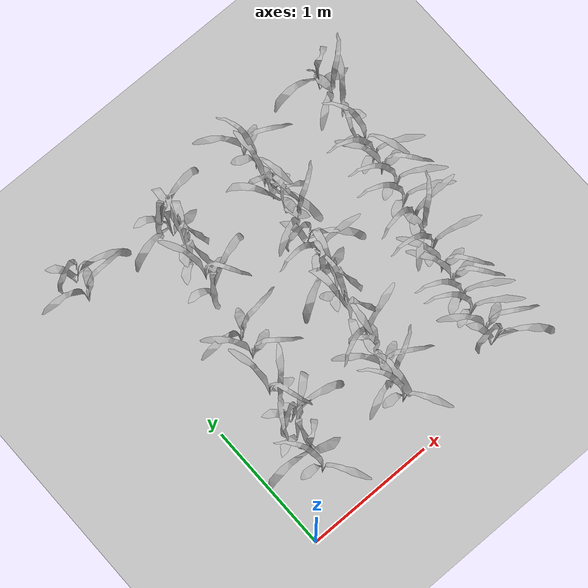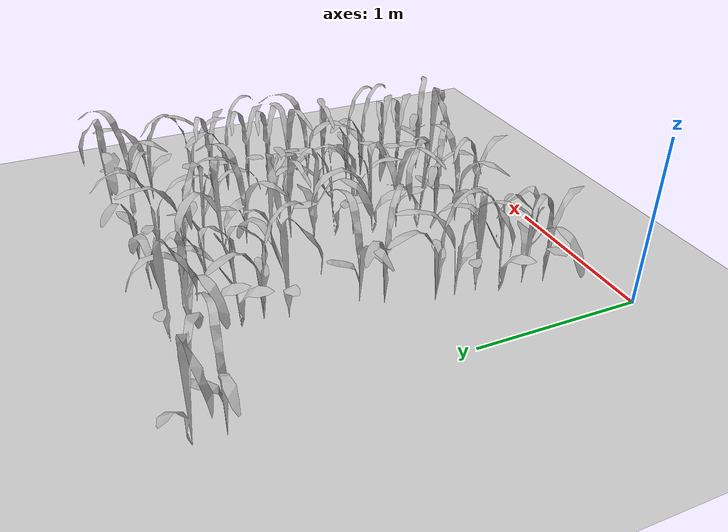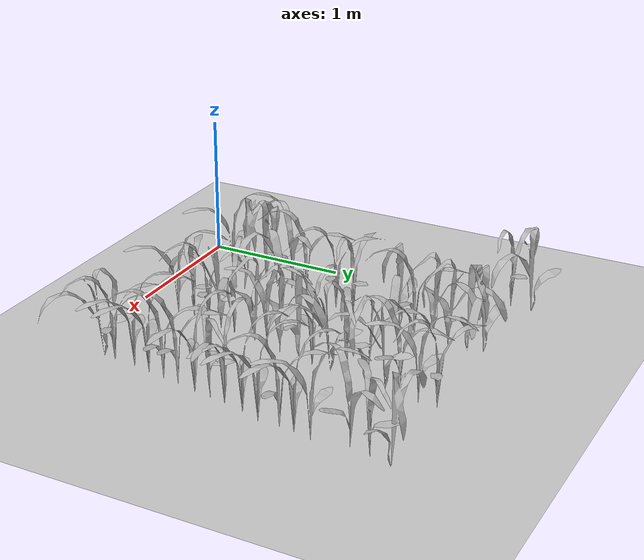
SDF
<sdf version="1.7">
 <world name="default">
  <model name="maize_02_0086">
   <pose>-0.081031 2.33269 -0.000245 -1.1e-05 1.2e-05 -1.03754</pose>
   <link name="maize_02_link">
    <inertial>
     <pose>0 0 0.01 0 -0 0</pose>
     <mass>0.3</mass>
     <inertia>
      <ixx>0.00334167</ixx>
      <ixy>0</ixy>
      <ixz>0</ixz>
      <iyy>0.00334167</iyy>
      <iyz>0</iyz>
      <izz>1.66667e-05</izz>
     </inertia>
     <pose>0 0 0.1 0 -0 0</pose>
    </inertial>
    <collision name="collision">
     <pose>0 0 0.2 0 -0 0</pose>
     <geometry><box><size>0.02 0.02 0.4</size></box></geometry>
     <surface><friction><ode><mu>10</mu><mu2>10</mu2></ode></friction></surface>
    </collision>
    <visual name="visual">
     <geometry>
      <mesh><uri>model://maize_02/meshes/maize_02.dae</uri><scale>0.683166 0.683166 0.683166</scale></mesh>
     </geometry>
    </visual>
   </link>
   <static>0</static>
  </model>
  <model name="maize_01_0087">
   <pose>-0.062156 2.4864 -0.000245 1.2e-05 -1.2e-05 0.398707</pose>
   <link name="maize_01_link">
    <inertial>
     <pose>0 0 0.01 0 -0 0</pose>
     <mass>0.3</mass>
     <inertia>
      <ixx>0.00334167</ixx>
      <ixy>0</ixy>
      <ixz>0</ixz>
      <iyy>0.00334167</iyy>
      <iyz>0</iyz>
      <izz>1.66667e-05</izz>
     </inertia>
     <pose>0 0 0.1 0 -0 0</pose>
    </inertial>
    <collision name="collision">
     <pose>0 0 0.2 0 -0 0</pose>
     <geometry><box><size>0.02 0.02 0.4</size></box></geometry>
     <surface><friction><ode><mu>10</mu><mu2>10</mu2></ode></friction></surface>
    </collision>
    <visual name="visual">
     <geometry>
      <mesh><uri>model://maize_01/meshes/maize_01.dae</uri><scale>0.683166 0.683166 0.683166</scale></mesh>
     </geometry>
    </visual>
   </link>
   <static>0</static>
  </model>
  <model name="maize_02_0110">
   <pose>0.354355 0.338241 -1e-06 6e-06 9.6e-05 1.08613</pose>
   <link name="maize_02_link">
    <inertial>
     <pose>0 0 0.01 0 -0 0</pose>
     <mass>0.3</mass>
     <inertia>
      <ixx>0.00334167</ixx>
      <ixy>0</ixy>
      <ixz>0</ixz>
      <iyy>0.00334167</iyy>
      <iyz>0</iyz>
      <izz>1.66667e-05</izz>
     </inertia>
     <pose>0 0 0.1 0 -0 0</pose>
    </inertial>
    <collision name="collision">
     <pose>0 0 0.2 0 -0 0</pose>
     <geometry><box><size>0.02 0.02 0.4</size></box></geometry>
     <surface><friction><ode><mu>10</mu><mu2>10</mu2></ode></friction></surface>
    </collision>
    <visual name="visual">
     <geometry>
      <mesh><uri>model://maize_02/meshes/maize_02.dae</uri><scale>0.683166 0.683166 0.683166</scale></mesh>
     </geometry>
    </visual>
   </link>
   <static>0</static>
  </model>
  <model name="maize_01_0111">
   <pose>0.375536 0.47279 -1e-06 -6e-06 -9.6e-05 -2.2901</pose>
   <link name="maize_01_link">
    <inertial>
     <pose>0 0 0.01 0 -0 0</pose>
     <mass>0.3</mass>
     <inertia>
      <ixx>0.00334167</ixx>
      <ixy>0</ixy>
      <ixz>0</ixz>
      <iyy>0.00334167</iyy>
      <iyz>0</iyz>
      <izz>1.66667e-05</izz>
     </inertia>
     <pose>0 0 0.1 0 -0 0</pose>
    </inertial>
    <collision name="collision">
     <pose>0 0 0.2 0 -0 0</pose>
     <geometry><box><size>0.02 0.02 0.4</size></box></geometry>
     <surface><friction><ode><mu>10</mu><mu2>10</mu2></ode></friction></surface>
    </collision>
    <visual name="visual">
     <geometry>
      <mesh><uri>model://maize_01/meshes/maize_01.dae</uri><scale>0.683166 0.683166 0.683166</scale></mesh>
     </geometry>
    </visual>
   </link>
   <static>0</static>
  </model>
  <model name="maize_01_0112">
   <pose>0.374012 0.623542 -1e-06 6e-06 9.6e-05 1.53382</pose>
   <link name="maize_01_link">
    <inertial>
     <pose>0 0 0.01 0 -0 0</pose>
     <mass>0.3</mass>
     <inertia>
      <ixx>0.00334167</ixx>
      <ixy>0</ixy>
      <ixz>0</ixz>
      <iyy>0.00334167</iyy>
      <iyz>0</iyz>
      <izz>1.66667e-05</izz>
     </inertia>
     <pose>0 0 0.1 0 -0 0</pose>
    </inertial>
    <collision name="collision">
     <pose>0 0 0.2 0 -0 0</pose>
     <geometry><box><size>0.02 0.02 0.4</size></box></geometry>
     <surface><friction><ode><mu>10</mu><mu2>10</mu2></ode></friction></surface>
    </collision>
    <visual name="visual">
     <geometry>
      <mesh><uri>model://maize_01/meshes/maize_01.dae</uri><scale>0.683166 0.683166 0.683166</scale></mesh>
     </geometry>
    </visual>
   </link>
   <static>0</static>
  </model>
  <model name="maize_01_0113">
   <pose>0.422794 0.743964 -1e-06 -9.6e-05 -6e-06 0.591219</pose>
   <link name="maize_01_link">
    <inertial>
     <pose>0 0 0.01 0 -0 0</pose>
     <mass>0.3</mass>
     <inertia>
      <ixx>0.00334167</ixx>
      <ixy>0</ixy>
      <ixz>0</ixz>
      <iyy>0.00334167</iyy>
      <iyz>0</iyz>
      <izz>1.66667e-05</izz>
     </inertia>
     <pose>0 0 0.1 0 -0 0</pose>
    </inertial>
    <collision name="collision">
     <pose>0 0 0.2 0 -0 0</pose>
     <geometry><box><size>0.02 0.02 0.4</size></box></geometry>
     <surface><friction><ode><mu>10</mu><mu2>10</mu2></ode></friction></surface>
    </collision>
    <visual name="visual">
     <geometry>
      <mesh><uri>model://maize_01/meshes/maize_01.dae</uri><scale>0.683166 0.683166 0.683166</scale></mesh>
     </geometry>
    </visual>
   </link>
   <static>0</static>
  </model>
  <model name="maize_02_0114">
   <pose>0.436553 0.871476 -1e-06 9.6e-05 -6e-06 3.0936</pose>
   <link name="maize_02_link">
    <inertial>
     <pose>0 0 0.01 0 -0 0</pose>
     <mass>0.3</mass>
     <inertia>
      <ixx>0.00334167</ixx>
      <ixy>0</ixy>
      <ixz>0</ixz>
      <iyy>0.00334167</iyy>
      <iyz>0</iyz>
      <izz>1.66667e-05</izz>
     </inertia>
     <pose>0 0 0.1 0 -0 0</pose>
    </inertial>
    <collision name="collision">
     <pose>0 0 0.2 0 -0 0</pose>
     <geometry><box><size>0.02 0.02 0.4</size></box></geometry>
     <surface><friction><ode><mu>10</mu><mu2>10</mu2></ode></friction></surface>
    </collision>
    <visual name="visual">
     <geometry>
      <mesh><uri>model://maize_02/meshes/maize_02.dae</uri><scale>0.683166 0.683166 0.683166</scale></mesh>
     </geometry>
    </visual>
   </link>
   <static>0</static>
  </model>
  <model name="maize_02_0115">
   <pose>0.437814 0.993077 -1e-06 -6e-06 -9.6e-05 -2.33157</pose>
   <link name="maize_02_link">
    <inertial>
     <pose>0 0 0.01 0 -0 0</pose>
     <mass>0.3</mass>
     <inertia>
      <ixx>0.00334167</ixx>
      <ixy>0</ixy>
      <ixz>0</ixz>
      <iyy>0.00334167</iyy>
      <iyz>0</iyz>
      <izz>1.66667e-05</izz>
     </inertia>
     <pose>0 0 0.1 0 -0 0</pose>
    </inertial>
    <collision name="collision">
     <pose>0 0 0.2 0 -0 0</pose>
     <geometry><box><size>0.02 0.02 0.4</size></box></geometry>
     <surface><friction><ode><mu>10</mu><mu2>10</mu2></ode></friction></surface>
    </collision>
    <visual name="visual">
     <geometry>
      <mesh><uri>model://maize_02/meshes/maize_02.dae</uri><scale>0.683166 0.683166 0.683166</scale></mesh>
     </geometry>
    </visual>
   </link>
   <static>0</static>
  </model>
  <model name="maize_02_0117">
   <pose>0.51786 1.26691 -1e-06 -9.6e-05 6e-06 -1.71861</pose>
   <link name="maize_02_link">
    <inertial>
     <pose>0 0 0.01 0 -0 0</pose>
     <mass>0.3</mass>
     <inertia>
      <ixx>0.00334167</ixx>
      <ixy>0</ixy>
      <ixz>0</ixz>
      <iyy>0.00334167</iyy>
      <iyz>0</iyz>
      <izz>1.66667e-05</izz>
     </inertia>
     <pose>0 0 0.1 0 -0 0</pose>
    </inertial>
    <collision name="collision">
     <pose>0 0 0.2 0 -0 0</pose>
     <geometry><box><size>0.02 0.02 0.4</size></box></geometry>
     <surface><friction><ode><mu>10</mu><mu2>10</mu2></ode></friction></surface>
    </collision>
    <visual name="visual">
     <geometry>
      <mesh><uri>model://maize_02/meshes/maize_02.dae</uri><scale>0.683166 0.683166 0.683166</scale></mesh>
     </geometry>
    </visual>
   </link>
   <static>0</static>
  </model>
  <model name="maize_02_0118">
   <pose>0.536292 1.41055 -0.000245 -1.1e-05 1.2e-05 -0.929973</pose>
   <link name="maize_02_link">
    <inertial>
     <pose>0 0 0.01 0 -0 0</pose>
     <mass>0.3</mass>
     <inertia>
      <ixx>0.00334167</ixx>
      <ixy>0</ixy>
      <ixz>0</ixz>
      <iyy>0.00334167</iyy>
      <iyz>0</iyz>
      <izz>1.66667e-05</izz>
     </inertia>
     <pose>0 0 0.1 0 -0 0</pose>
    </inertial>
    <collision name="collision">
     <pose>0 0 0.2 0 -0 0</pose>
     <geometry><box><size>0.02 0.02 0.4</size></box></geometry>
     <surface><friction><ode><mu>10</mu><mu2>10</mu2></ode></friction></surface>
    </collision>
    <visual name="visual">
     <geometry>
      <mesh><uri>model://maize_02/meshes/maize_02.dae</uri><scale>0.683166 0.683166 0.683166</scale></mesh>
     </geometry>
    </visual>
   </link>
   <static>0</static>
  </model>
  <model name="maize_01_0119">
   <pose>0.60163 1.78681 -0.000245 -1.1e-05 -1.2e-05 1.12217</pose>
   <link name="maize_01_link">
    <inertial>
     <pose>0 0 0.01 0 -0 0</pose>
     <mass>0.3</mass>
     <inertia>
      <ixx>0.00334167</ixx>
      <ixy>0</ixy>
      <ixz>0</ixz>
      <iyy>0.00334167</iyy>
      <iyz>0</iyz>
      <izz>1.66667e-05</izz>
     </inertia>
     <pose>0 0 0.1 0 -0 0</pose>
    </inertial>
    <collision name="collision">
     <pose>0 0 0.2 0 -0 0</pose>
     <geometry><box><size>0.02 0.02 0.4</size></box></geometry>
     <surface><friction><ode><mu>10</mu><mu2>10</mu2></ode></friction></surface>
    </collision>
    <visual name="visual">
     <geometry>
      <mesh><uri>model://maize_01/meshes/maize_01.dae</uri><scale>0.683166 0.683166 0.683166</scale></mesh>
     </geometry>
    </visual>
   </link>
   <static>0</static>
  </model>
  <model name="maize_02_0120">
   <pose>0.643655 1.91714 -0.000245 1.1e-05 1.2e-05 -2.10545</pose>
   <link name="maize_02_link">
    <inertial>
     <pose>0 0 0.01 0 -0 0</pose>
     <mass>0.3</mass>
     <inertia>
      <ixx>0.00334167</ixx>
      <ixy>0</ixy>
      <ixz>0</ixz>
      <iyy>0.00334167</iyy>
      <iyz>0</iyz>
      <izz>1.66667e-05</izz>
     </inertia>
     <pose>0 0 0.1 0 -0 0</pose>
    </inertial>
    <collision name="collision">
     <pose>0 0 0.2 0 -0 0</pose>
     <geometry><box><size>0.02 0.02 0.4</size></box></geometry>
     <surface><friction><ode><mu>10</mu><mu2>10</mu2></ode></friction></surface>
    </collision>
    <visual name="visual">
     <geometry>
      <mesh><uri>model://maize_02/meshes/maize_02.dae</uri><scale>0.683166 0.683166 0.683166</scale></mesh>
     </geometry>
    </visual>
   </link>
   <static>0</static>
  </model>
  <model name="maize_01_0121">
   <pose>0.629464 2.04697 -0.000245 -1.1e-05 1.2e-05 1.94563</pose>
   <link name="maize_01_link">
    <inertial>
     <pose>0 0 0.01 0 -0 0</pose>
     <mass>0.3</mass>
     <inertia>
      <ixx>0.00334167</ixx>
      <ixy>0</ixy>
      <ixz>0</ixz>
      <iyy>0.00334167</iyy>
      <iyz>0</iyz>
      <izz>1.66667e-05</izz>
     </inertia>
     <pose>0 0 0.1 0 -0 0</pose>
    </inertial>
    <collision name="collision">
     <pose>0 0 0.2 0 -0 0</pose>
     <geometry><box><size>0.02 0.02 0.4</size></box></geometry>
     <surface><friction><ode><mu>10</mu><mu2>10</mu2></ode></friction></surface>
    </collision>
    <visual name="visual">
     <geometry>
      <mesh><uri>model://maize_01/meshes/maize_01.dae</uri><scale>0.683166 0.683166 0.683166</scale></mesh>
     </geometry>
    </visual>
   </link>
   <static>0</static>
  </model>
  <model name="maize_01_0122">
   <pose>0.675617 2.17476 -0.000245 1.1e-05 -1.2e-05 2.19704</pose>
   <link name="maize_01_link">
    <inertial>
     <pose>0 0 0.01 0 -0 0</pose>
     <mass>0.3</mass>
     <inertia>
      <ixx>0.00334167</ixx>
      <ixy>0</ixy>
      <ixz>0</ixz>
      <iyy>0.00334167</iyy>
      <iyz>0</iyz>
      <izz>1.66667e-05</izz>
     </inertia>
     <pose>0 0 0.1 0 -0 0</pose>
    </inertial>
    <collision name="collision">
     <pose>0 0 0.2 0 -0 0</pose>
     <geometry><box><size>0.02 0.02 0.4</size></box></geometry>
     <surface><friction><ode><mu>10</mu><mu2>10</mu2></ode></friction></surface>
    </collision>
    <visual name="visual">
     <geometry>
      <mesh><uri>model://maize_01/meshes/maize_01.dae</uri><scale>0.683166 0.683166 0.683166</scale></mesh>
     </geometry>
    </visual>
   </link>
   <static>0</static>
  </model>
  <model name="maize_01_0123">
   <pose>0.673494 2.31518 -0.000245 1.1e-05 1.2e-05 -2.09889</pose>
   <link name="maize_01_link">
    <inertial>
     <pose>0 0 0.01 0 -0 0</pose>
     <mass>0.3</mass>
     <inertia>
      <ixx>0.00334167</ixx>
      <ixy>0</ixy>
      <ixz>0</ixz>
      <iyy>0.00334167</iyy>
      <iyz>0</iyz>
      <izz>1.66667e-05</izz>
     </inertia>
     <pose>0 0 0.1 0 -0 0</pose>
    </inertial>
    <collision name="collision">
     <pose>0 0 0.2 0 -0 0</pose>
     <geometry><box><size>0.02 0.02 0.4</size></box></geometry>
     <surface><friction><ode><mu>10</mu><mu2>10</mu2></ode></friction></surface>
    </collision>
    <visual name="visual">
     <geometry>
      <mesh><uri>model://maize_01/meshes/maize_01.dae</uri><scale>0.683166 0.683166 0.683166</scale></mesh>
     </geometry>
    </visual>
   </link>
   <static>0</static>
  </model>
  <model name="maize_01_0124">
   <pose>0.658595 2.41584 -0.000245 -1.1e-05 -1.2e-05 0.958909</pose>
   <link name="maize_01_link">
    <inertial>
     <pose>0 0 0.01 0 -0 0</pose>
     <mass>0.3</mass>
     <inertia>
      <ixx>0.00334167</ixx>
      <ixy>0</ixy>
      <ixz>0</ixz>
      <iyy>0.00334167</iyy>
      <iyz>0</iyz>
      <izz>1.66667e-05</izz>
     </inertia>
     <pose>0 0 0.1 0 -0 0</pose>
    </inertial>
    <collision name="collision">
     <pose>0 0 0.2 0 -0 0</pose>
     <geometry><box><size>0.02 0.02 0.4</size></box></geometry>
     <surface><friction><ode><mu>10</mu><mu2>10</mu2></ode></friction></surface>
    </collision>
    <visual name="visual">
     <geometry>
      <mesh><uri>model://maize_01/meshes/maize_01.dae</uri><scale>0.683166 0.683166 0.683166</scale></mesh>
     </geometry>
    </visual>
   </link>
   <static>0</static>
  </model>
  <model name="maize_02_0147">
   <pose>1.10628 0.346706 -0.000245 -1.2e-05 1.2e-05 1.07802</pose>
   <link name="maize_02_link">
    <inertial>
     <pose>0 0 0.01 0 -0 0</pose>
     <mass>0.3</mass>
     <inertia>
      <ixx>0.00334167</ixx>
      <ixy>0</ixy>
      <ixz>0</ixz>
      <iyy>0.00334167</iyy>
      <iyz>0</iyz>
      <izz>1.66667e-05</izz>
     </inertia>
     <pose>0 0 0.1 0 -0 0</pose>
    </inertial>
    <collision name="collision">
     <pose>0 0 0.2 0 -0 0</pose>
     <geometry><box><size>0.02 0.02 0.4</size></box></geometry>
     <surface><friction><ode><mu>10</mu><mu2>10</mu2></ode></friction></surface>
    </collision>
    <visual name="visual">
     <geometry>
      <mesh><uri>model://maize_02/meshes/maize_02.dae</uri><scale>0.683166 0.683166 0.683166</scale></mesh>
     </geometry>
    </visual>
   </link>
   <static>0</static>
  </model>
  <model name="maize_02_0148">
   <pose>1.10485 0.475249 -0.000245 -1.2e-05 -1.2e-05 -0.554522</pose>
   <link name="maize_02_link">
    <inertial>
     <pose>0 0 0.01 0 -0 0</pose>
     <mass>0.3</mass>
     <inertia>
      <ixx>0.00334167</ixx>
      <ixy>0</ixy>
      <ixz>0</ixz>
      <iyy>0.00334167</iyy>
      <iyz>0</iyz>
      <izz>1.66667e-05</izz>
     </inertia>
     <pose>0 0 0.1 0 -0 0</pose>
    </inertial>
    <collision name="collision">
     <pose>0 0 0.2 0 -0 0</pose>
     <geometry><box><size>0.02 0.02 0.4</size></box></geometry>
     <surface><friction><ode><mu>10</mu><mu2>10</mu2></ode></friction></surface>
    </collision>
    <visual name="visual">
     <geometry>
      <mesh><uri>model://maize_02/meshes/maize_02.dae</uri><scale>0.683166 0.683166 0.683166</scale></mesh>
     </geometry>
    </visual>
   </link>
   <static>0</static>
  </model>
  <model name="maize_02_0149">
   <pose>1.13518 0.609726 -0.000245 -1.2e-05 -1.2e-05 -1.60262</pose>
   <link name="maize_02_link">
    <inertial>
     <pose>0 0 0.01 0 -0 0</pose>
     <mass>0.3</mass>
     <inertia>
      <ixx>0.00334167</ixx>
      <ixy>0</ixy>
      <ixz>0</ixz>
      <iyy>0.00334167</iyy>
      <iyz>0</iyz>
      <izz>1.66667e-05</izz>
     </inertia>
     <pose>0 0 0.1 0 -0 0</pose>
    </inertial>
    <collision name="collision">
     <pose>0 0 0.2 0 -0 0</pose>
     <geometry><box><size>0.02 0.02 0.4</size></box></geometry>
     <surface><friction><ode><mu>10</mu><mu2>10</mu2></ode></friction></surface>
    </collision>
    <visual name="visual">
     <geometry>
      <mesh><uri>model://maize_02/meshes/maize_02.dae</uri><scale>0.683166 0.683166 0.683166</scale></mesh>
     </geometry>
    </visual>
   </link>
   <static>0</static>
  </model>
  <model name="maize_01_0150">
   <pose>1.15276 0.717407 -0.000245 -1.2e-05 -1.2e-05 -0.872032</pose>
   <link name="maize_01_link">
    <inertial>
     <pose>0 0 0.01 0 -0 0</pose>
     <mass>0.3</mass>
     <inertia>
      <ixx>0.00334167</ixx>
      <ixy>0</ixy>
      <ixz>0</ixz>
      <iyy>0.00334167</iyy>
      <iyz>0</iyz>
      <izz>1.66667e-05</izz>
     </inertia>
     <pose>0 0 0.1 0 -0 0</pose>
    </inertial>
    <collision name="collision">
     <pose>0 0 0.2 0 -0 0</pose>
     <geometry><box><size>0.02 0.02 0.4</size></box></geometry>
     <surface><friction><ode><mu>10</mu><mu2>10</mu2></ode></friction></surface>
    </collision>
    <visual name="visual">
     <geometry>
      <mesh><uri>model://maize_01/meshes/maize_01.dae</uri><scale>0.683166 0.683166 0.683166</scale></mesh>
     </geometry>
    </visual>
   </link>
   <static>0</static>
  </model>
  <model name="maize_02_0151">
   <pose>1.19778 0.848006 -0.000245 1.2e-05 1.2e-05 2.48058</pose>
   <link name="maize_02_link">
    <inertial>
     <pose>0 0 0.01 0 -0 0</pose>
     <mass>0.3</mass>
     <inertia>
      <ixx>0.00334167</ixx>
      <ixy>0</ixy>
      <ixz>0</ixz>
      <iyy>0.00334167</iyy>
      <iyz>0</iyz>
      <izz>1.66667e-05</izz>
     </inertia>
     <pose>0 0 0.1 0 -0 0</pose>
    </inertial>
    <collision name="collision">
     <pose>0 0 0.2 0 -0 0</pose>
     <geometry><box><size>0.02 0.02 0.4</size></box></geometry>
     <surface><friction><ode><mu>10</mu><mu2>10</mu2></ode></friction></surface>
    </collision>
    <visual name="visual">
     <geometry>
      <mesh><uri>model://maize_02/meshes/maize_02.dae</uri><scale>0.683166 0.683166 0.683166</scale></mesh>
     </geometry>
    </visual>
   </link>
   <static>0</static>
  </model>
  <model name="maize_01_0152">
   <pose>1.20715 1.00955 -0.000245 1.2e-05 1.2e-05 2.41906</pose>
   <link name="maize_01_link">
    <inertial>
     <pose>0 0 0.01 0 -0 0</pose>
     <mass>0.3</mass>
     <inertia>
      <ixx>0.00334167</ixx>
      <ixy>0</ixy>
      <ixz>0</ixz>
      <iyy>0.00334167</iyy>
      <iyz>0</iyz>
      <izz>1.66667e-05</izz>
     </inertia>
     <pose>0 0 0.1 0 -0 0</pose>
    </inertial>
    <collision name="collision">
     <pose>0 0 0.2 0 -0 0</pose>
     <geometry><box><size>0.02 0.02 0.4</size></box></geometry>
     <surface><friction><ode><mu>10</mu><mu2>10</mu2></ode></friction></surface>
    </collision>
    <visual name="visual">
     <geometry>
      <mesh><uri>model://maize_01/meshes/maize_01.dae</uri><scale>0.683166 0.683166 0.683166</scale></mesh>
     </geometry>
    </visual>
   </link>
   <static>0</static>
  </model>
  <model name="maize_02_0153">
   <pose>1.24107 1.12393 -0.000245 -1.2e-05 1.2e-05 0.449679</pose>
   <link name="maize_02_link">
    <inertial>
     <pose>0 0 0.01 0 -0 0</pose>
     <mass>0.3</mass>
     <inertia>
      <ixx>0.00334167</ixx>
      <ixy>0</ixy>
      <ixz>0</ixz>
      <iyy>0.00334167</iyy>
      <iyz>0</iyz>
      <izz>1.66667e-05</izz>
     </inertia>
     <pose>0 0 0.1 0 -0 0</pose>
    </inertial>
    <collision name="collision">
     <pose>0 0 0.2 0 -0 0</pose>
     <geometry><box><size>0.02 0.02 0.4</size></box></geometry>
     <surface><friction><ode><mu>10</mu><mu2>10</mu2></ode></friction></surface>
    </collision>
    <visual name="visual">
     <geometry>
      <mesh><uri>model://maize_02/meshes/maize_02.dae</uri><scale>0.683166 0.683166 0.683166</scale></mesh>
     </geometry>
    </visual>
   </link>
   <static>0</static>
  </model>
  <model name="maize_01_0154">
   <pose>1.27299 1.23605 -0.000245 1.2e-05 1.2e-05 2.07229</pose>
   <link name="maize_01_link">
    <inertial>
     <pose>0 0 0.01 0 -0 0</pose>
     <mass>0.3</mass>
     <inertia>
      <ixx>0.00334167</ixx>
      <ixy>0</ixy>
      <ixz>0</ixz>
      <iyy>0.00334167</iyy>
      <iyz>0</iyz>
      <izz>1.66667e-05</izz>
     </inertia>
     <pose>0 0 0.1 0 -0 0</pose>
    </inertial>
    <collision name="collision">
     <pose>0 0 0.2 0 -0 0</pose>
     <geometry><box><size>0.02 0.02 0.4</size></box></geometry>
     <surface><friction><ode><mu>10</mu><mu2>10</mu2></ode></friction></surface>
    </collision>
    <visual name="visual">
     <geometry>
      <mesh><uri>model://maize_01/meshes/maize_01.dae</uri><scale>0.683166 0.683166 0.683166</scale></mesh>
     </geometry>
    </visual>
   </link>
   <static>0</static>
  </model>
  <model name="maize_01_0155">
   <pose>1.26946 1.37908 -0.000245 1.2e-05 -1.2e-05 -1.80937</pose>
   <link name="maize_01_link">
    <inertial>
     <pose>0 0 0.01 0 -0 0</pose>
     <mass>0.3</mass>
     <inertia>
      <ixx>0.00334167</ixx>
      <ixy>0</ixy>
      <ixz>0</ixz>
      <iyy>0.00334167</iyy>
      <iyz>0</iyz>
      <izz>1.66667e-05</izz>
     </inertia>
     <pose>0 0 0.1 0 -0 0</pose>
    </inertial>
    <collision name="collision">
     <pose>0 0 0.2 0 -0 0</pose>
     <geometry><box><size>0.02 0.02 0.4</size></box></geometry>
     <surface><friction><ode><mu>10</mu><mu2>10</mu2></ode></friction></surface>
    </collision>
    <visual name="visual">
     <geometry>
      <mesh><uri>model://maize_01/meshes/maize_01.dae</uri><scale>0.683166 0.683166 0.683166</scale></mesh>
     </geometry>
    </visual>
   </link>
   <static>0</static>
  </model>
  <model name="maize_02_0156">
   <pose>1.33116 1.50671 -0.000245 1.2e-05 1.2e-05 2.08945</pose>
   <link name="maize_02_link">
    <inertial>
     <pose>0 0 0.01 0 -0 0</pose>
     <mass>0.3</mass>
     <inertia>
      <ixx>0.00334167</ixx>
      <ixy>0</ixy>
      <ixz>0</ixz>
      <iyy>0.00334167</iyy>
      <iyz>0</iyz>
      <izz>1.66667e-05</izz>
     </inertia>
     <pose>0 0 0.1 0 -0 0</pose>
    </inertial>
    <collision name="collision">
     <pose>0 0 0.2 0 -0 0</pose>
     <geometry><box><size>0.02 0.02 0.4</size></box></geometry>
     <surface><friction><ode><mu>10</mu><mu2>10</mu2></ode></friction></surface>
    </collision>
    <visual name="visual">
     <geometry>
      <mesh><uri>model://maize_02/meshes/maize_02.dae</uri><scale>0.683166 0.683166 0.683166</scale></mesh>
     </geometry>
    </visual>
   </link>
   <static>0</static>
  </model>
  <model name="maize_01_0157">
   <pose>1.33108 1.63729 -0.000245 1.2e-05 1.2e-05 0.011187</pose>
   <link name="maize_01_link">
    <inertial>
     <pose>0 0 0.01 0 -0 0</pose>
     <mass>0.3</mass>
     <inertia>
      <ixx>0.00334167</ixx>
      <ixy>0</ixy>
      <ixz>0</ixz>
      <iyy>0.00334167</iyy>
      <iyz>0</iyz>
      <izz>1.66667e-05</izz>
     </inertia>
     <pose>0 0 0.1 0 -0 0</pose>
    </inertial>
    <collision name="collision">
     <pose>0 0 0.2 0 -0 0</pose>
     <geometry><box><size>0.02 0.02 0.4</size></box></geometry>
     <surface><friction><ode><mu>10</mu><mu2>10</mu2></ode></friction></surface>
    </collision>
    <visual name="visual">
     <geometry>
      <mesh><uri>model://maize_01/meshes/maize_01.dae</uri><scale>0.683166 0.683166 0.683166</scale></mesh>
     </geometry>
    </visual>
   </link>
   <static>0</static>
  </model>
  <model name="maize_02_0158">
   <pose>1.37618 1.77807 -0.000245 -1.2e-05 1.2e-05 -0.458555</pose>
   <link name="maize_02_link">
    <inertial>
     <pose>0 0 0.01 0 -0 0</pose>
     <mass>0.3</mass>
     <inertia>
      <ixx>0.00334167</ixx>
      <ixy>0</ixy>
      <ixz>0</ixz>
      <iyy>0.00334167</iyy>
      <iyz>0</iyz>
      <izz>1.66667e-05</izz>
     </inertia>
     <pose>0 0 0.1 0 -0 0</pose>
    </inertial>
    <collision name="collision">
     <pose>0 0 0.2 0 -0 0</pose>
     <geometry><box><size>0.02 0.02 0.4</size></box></geometry>
     <surface><friction><ode><mu>10</mu><mu2>10</mu2></ode></friction></surface>
    </collision>
    <visual name="visual">
     <geometry>
      <mesh><uri>model://maize_02/meshes/maize_02.dae</uri><scale>0.683166 0.683166 0.683166</scale></mesh>
     </geometry>
    </visual>
   </link>
   <static>0</static>
  </model>
  <model name="maize_01_0159">
   <pose>1.38688 1.92236 -0.000245 1.2e-05 1.2e-05 3.05468</pose>
   <link name="maize_01_link">
    <inertial>
     <pose>0 0 0.01 0 -0 0</pose>
     <mass>0.3</mass>
     <inertia>
      <ixx>0.00334167</ixx>
      <ixy>0</ixy>
      <ixz>0</ixz>
      <iyy>0.00334167</iyy>
      <iyz>0</iyz>
      <izz>1.66667e-05</izz>
     </inertia>
     <pose>0 0 0.1 0 -0 0</pose>
    </inertial>
    <collision name="collision">
     <pose>0 0 0.2 0 -0 0</pose>
     <geometry><box><size>0.02 0.02 0.4</size></box></geometry>
     <surface><friction><ode><mu>10</mu><mu2>10</mu2></ode></friction></surface>
    </collision>
    <visual name="visual">
     <geometry>
      <mesh><uri>model://maize_01/meshes/maize_01.dae</uri><scale>0.683166 0.683166 0.683166</scale></mesh>
     </geometry>
    </visual>
   </link>
   <static>0</static>
  </model>
  <model name="maize_01_0160">
   <pose>1.38172 2.04762 -0.000245 -1.2e-05 1.2e-05 -0.552599</pose>
   <link name="maize_01_link">
    <inertial>
     <pose>0 0 0.01 0 -0 0</pose>
     <mass>0.3</mass>
     <inertia>
      <ixx>0.00334167</ixx>
      <ixy>0</ixy>
      <ixz>0</ixz>
      <iyy>0.00334167</iyy>
      <iyz>0</iyz>
      <izz>1.66667e-05</izz>
     </inertia>
     <pose>0 0 0.1 0 -0 0</pose>
    </inertial>
    <collision name="collision">
     <pose>0 0 0.2 0 -0 0</pose>
     <geometry><box><size>0.02 0.02 0.4</size></box></geometry>
     <surface><friction><ode><mu>10</mu><mu2>10</mu2></ode></friction></surface>
    </collision>
    <visual name="visual">
     <geometry>
      <mesh><uri>model://maize_01/meshes/maize_01.dae</uri><scale>0.683166 0.683166 0.683166</scale></mesh>
     </geometry>
    </visual>
   </link>
   <static>0</static>
  </model>
  <model name="maize_02_0161">
   <pose>1.39508 2.15306 -0.000245 1.2e-05 1.2e-05 -2.57605</pose>
   <link name="maize_02_link">
    <inertial>
     <pose>0 0 0.01 0 -0 0</pose>
     <mass>0.3</mass>
     <inertia>
      <ixx>0.00334167</ixx>
      <ixy>0</ixy>
      <ixz>0</ixz>
      <iyy>0.00334167</iyy>
      <iyz>0</iyz>
      <izz>1.66667e-05</izz>
     </inertia>
     <pose>0 0 0.1 0 -0 0</pose>
    </inertial>
    <collision name="collision">
     <pose>0 0 0.2 0 -0 0</pose>
     <geometry><box><size>0.02 0.02 0.4</size></box></geometry>
     <surface><friction><ode><mu>10</mu><mu2>10</mu2></ode></friction></surface>
    </collision>
    <visual name="visual">
     <geometry>
      <mesh><uri>model://maize_02/meshes/maize_02.dae</uri><scale>0.683166 0.683166 0.683166</scale></mesh>
     </geometry>
    </visual>
   </link>
   <static>0</static>
  </model>
  <model name="maize_02_0162">
   <pose>1.4365 2.29786 -0.000245 -1.2e-05 -1.2e-05 0.710932</pose>
   <link name="maize_02_link">
    <inertial>
     <pose>0 0 0.01 0 -0 0</pose>
     <mass>0.3</mass>
     <inertia>
      <ixx>0.00334167</ixx>
      <ixy>0</ixy>
      <ixz>0</ixz>
      <iyy>0.00334167</iyy>
      <iyz>0</iyz>
      <izz>1.66667e-05</izz>
     </inertia>
     <pose>0 0 0.1 0 -0 0</pose>
    </inertial>
    <collision name="collision">
     <pose>0 0 0.2 0 -0 0</pose>
     <geometry><box><size>0.02 0.02 0.4</size></box></geometry>
     <surface><friction><ode><mu>10</mu><mu2>10</mu2></ode></friction></surface>
    </collision>
    <visual name="visual">
     <geometry>
      <mesh><uri>model://maize_02/meshes/maize_02.dae</uri><scale>0.683166 0.683166 0.683166</scale></mesh>
     </geometry>
    </visual>
   </link>
   <static>0</static>
  </model>
  <model name="maize_02_0163">
   <pose>1.4307 2.42271 -0.000245 -1.2e-05 -1.2e-05 -1.54925</pose>
   <link name="maize_02_link">
    <inertial>
     <pose>0 0 0.01 0 -0 0</pose>
     <mass>0.3</mass>
     <inertia>
      <ixx>0.00334167</ixx>
      <ixy>0</ixy>
      <ixz>0</ixz>
      <iyy>0.00334167</iyy>
      <iyz>0</iyz>
      <izz>1.66667e-05</izz>
     </inertia>
     <pose>0 0 0.1 0 -0 0</pose>
    </inertial>
    <collision name="collision">
     <pose>0 0 0.2 0 -0 0</pose>
     <geometry><box><size>0.02 0.02 0.4</size></box></geometry>
     <surface><friction><ode><mu>10</mu><mu2>10</mu2></ode></friction></surface>
    </collision>
    <visual name="visual">
     <geometry>
      <mesh><uri>model://maize_02/meshes/maize_02.dae</uri><scale>0.683166 0.683166 0.683166</scale></mesh>
     </geometry>
    </visual>
   </link>
   <static>0</static>
  </model>
  <model name="maize_01_0185">
   <pose>1.843 0.246525 -1e-06 6e-06 -9.6e-05 0.119906</pose>
   <link name="maize_01_link">
    <inertial>
     <pose>0 0 0.01 0 -0 0</pose>
     <mass>0.3</mass>
     <inertia>
      <ixx>0.00334167</ixx>
      <ixy>0</ixy>
      <ixz>0</ixz>
      <iyy>0.00334167</iyy>
      <iyz>0</iyz>
      <izz>1.66667e-05</izz>
     </inertia>
     <pose>0 0 0.1 0 -0 0</pose>
    </inertial>
    <collision name="collision">
     <pose>0 0 0.2 0 -0 0</pose>
     <geometry><box><size>0.02 0.02 0.4</size></box></geometry>
     <surface><friction><ode><mu>10</mu><mu2>10</mu2></ode></friction></surface>
    </collision>
    <visual name="visual">
     <geometry>
      <mesh><uri>model://maize_01/meshes/maize_01.dae</uri><scale>0.683166 0.683166 0.683166</scale></mesh>
     </geometry>
    </visual>
   </link>
   <static>0</static>
  </model>
  <model name="maize_02_0186">
   <pose>1.86387 0.346755 -1e-06 -9.6e-05 6e-06 -1.59288</pose>
   <link name="maize_02_link">
    <inertial>
     <pose>0 0 0.01 0 -0 0</pose>
     <mass>0.3</mass>
     <inertia>
      <ixx>0.00334167</ixx>
      <ixy>0</ixy>
      <ixz>0</ixz>
      <iyy>0.00334167</iyy>
      <iyz>0</iyz>
      <izz>1.66667e-05</izz>
     </inertia>
     <pose>0 0 0.1 0 -0 0</pose>
    </inertial>
    <collision name="collision">
     <pose>0 0 0.2 0 -0 0</pose>
     <geometry><box><size>0.02 0.02 0.4</size></box></geometry>
     <surface><friction><ode><mu>10</mu><mu2>10</mu2></ode></friction></surface>
    </collision>
    <visual name="visual">
     <geometry>
      <mesh><uri>model://maize_02/meshes/maize_02.dae</uri><scale>0.683166 0.683166 0.683166</scale></mesh>
     </geometry>
    </visual>
   </link>
   <static>0</static>
  </model>
  <model name="maize_02_0187">
   <pose>1.86891 0.50101 -1e-06 9.6e-05 -6e-06 1.50461</pose>
   <link name="maize_02_link">
    <inertial>
     <pose>0 0 0.01 0 -0 0</pose>
     <mass>0.3</mass>
     <inertia>
      <ixx>0.00334167</ixx>
      <ixy>0</ixy>
      <ixz>0</ixz>
      <iyy>0.00334167</iyy>
      <iyz>0</iyz>
      <izz>1.66667e-05</izz>
     </inertia>
     <pose>0 0 0.1 0 -0 0</pose>
    </inertial>
    <collision name="collision">
     <pose>0 0 0.2 0 -0 0</pose>
     <geometry><box><size>0.02 0.02 0.4</size></box></geometry>
     <surface><friction><ode><mu>10</mu><mu2>10</mu2></ode></friction></surface>
    </collision>
    <visual name="visual">
     <geometry>
      <mesh><uri>model://maize_02/meshes/maize_02.dae</uri><scale>0.683166 0.683166 0.683166</scale></mesh>
     </geometry>
    </visual>
   </link>
   <static>0</static>
  </model>
  <model name="maize_02_0188">
   <pose>1.88363 0.621008 -1e-06 9.6e-05 6e-06 1.58333</pose>
   <link name="maize_02_link">
    <inertial>
     <pose>0 0 0.01 0 -0 0</pose>
     <mass>0.3</mass>
     <inertia>
      <ixx>0.00334167</ixx>
      <ixy>0</ixy>
      <ixz>0</ixz>
      <iyy>0.00334167</iyy>
      <iyz>0</iyz>
      <izz>1.66667e-05</izz>
     </inertia>
     <pose>0 0 0.1 0 -0 0</pose>
    </inertial>
    <collision name="collision">
     <pose>0 0 0.2 0 -0 0</pose>
     <geometry><box><size>0.02 0.02 0.4</size></box></geometry>
     <surface><friction><ode><mu>10</mu><mu2>10</mu2></ode></friction></surface>
    </collision>
    <visual name="visual">
     <geometry>
      <mesh><uri>model://maize_02/meshes/maize_02.dae</uri><scale>0.683166 0.683166 0.683166</scale></mesh>
     </geometry>
    </visual>
   </link>
   <static>0</static>
  </model>
  <model name="maize_02_0189">
   <pose>1.92329 0.760063 -0.000245 -1.2e-05 1.1e-05 -1.99578</pose>
   <link name="maize_02_link">
    <inertial>
     <pose>0 0 0.01 0 -0 0</pose>
     <mass>0.3</mass>
     <inertia>
      <ixx>0.00334167</ixx>
      <ixy>0</ixy>
      <ixz>0</ixz>
      <iyy>0.00334167</iyy>
      <iyz>0</iyz>
      <izz>1.66667e-05</izz>
     </inertia>
     <pose>0 0 0.1 0 -0 0</pose>
    </inertial>
    <collision name="collision">
     <pose>0 0 0.2 0 -0 0</pose>
     <geometry><box><size>0.02 0.02 0.4</size></box></geometry>
     <surface><friction><ode><mu>10</mu><mu2>10</mu2></ode></friction></surface>
    </collision>
    <visual name="visual">
     <geometry>
      <mesh><uri>model://maize_02/meshes/maize_02.dae</uri><scale>0.683166 0.683166 0.683166</scale></mesh>
     </geometry>
    </visual>
   </link>
   <static>0</static>
  </model>
  <model name="maize_02_0190">
   <pose>1.92695 0.869426 -0.000245 -1.2e-05 1.1e-05 -2.0313</pose>
   <link name="maize_02_link">
    <inertial>
     <pose>0 0 0.01 0 -0 0</pose>
     <mass>0.3</mass>
     <inertia>
      <ixx>0.00334167</ixx>
      <ixy>0</ixy>
      <ixz>0</ixz>
      <iyy>0.00334167</iyy>
      <iyz>0</iyz>
      <izz>1.66667e-05</izz>
     </inertia>
     <pose>0 0 0.1 0 -0 0</pose>
    </inertial>
    <collision name="collision">
     <pose>0 0 0.2 0 -0 0</pose>
     <geometry><box><size>0.02 0.02 0.4</size></box></geometry>
     <surface><friction><ode><mu>10</mu><mu2>10</mu2></ode></friction></surface>
    </collision>
    <visual name="visual">
     <geometry>
      <mesh><uri>model://maize_02/meshes/maize_02.dae</uri><scale>0.683166 0.683166 0.683166</scale></mesh>
     </geometry>
    </visual>
   </link>
   <static>0</static>
  </model>
  <model name="maize_02_0191">
   <pose>1.97219 1.02111 -1e-06 -6e-06 -9.6e-05 1.88916</pose>
   <link name="maize_02_link">
    <inertial>
     <pose>0 0 0.01 0 -0 0</pose>
     <mass>0.3</mass>
     <inertia>
      <ixx>0.00334167</ixx>
      <ixy>0</ixy>
      <ixz>0</ixz>
      <iyy>0.00334167</iyy>
      <iyz>0</iyz>
      <izz>1.66667e-05</izz>
     </inertia>
     <pose>0 0 0.1 0 -0 0</pose>
    </inertial>
    <collision name="collision">
     <pose>0 0 0.2 0 -0 0</pose>
     <geometry><box><size>0.02 0.02 0.4</size></box></geometry>
     <surface><friction><ode><mu>10</mu><mu2>10</mu2></ode></friction></surface>
    </collision>
    <visual name="visual">
     <geometry>
      <mesh><uri>model://maize_02/meshes/maize_02.dae</uri><scale>0.683166 0.683166 0.683166</scale></mesh>
     </geometry>
    </visual>
   </link>
   <static>0</static>
  </model>
  <model name="maize_02_0192">
   <pose>1.98189 1.13926 -1e-06 9.6e-05 6e-06 -0.228362</pose>
   <link name="maize_02_link">
    <inertial>
     <pose>0 0 0.01 0 -0 0</pose>
     <mass>0.3</mass>
     <inertia>
      <ixx>0.00334167</ixx>
      <ixy>0</ixy>
      <ixz>0</ixz>
      <iyy>0.00334167</iyy>
      <iyz>0</iyz>
      <izz>1.66667e-05</izz>
     </inertia>
     <pose>0 0 0.1 0 -0 0</pose>
    </inertial>
    <collision name="collision">
     <pose>0 0 0.2 0 -0 0</pose>
     <geometry><box><size>0.02 0.02 0.4</size></box></geometry>
     <surface><friction><ode><mu>10</mu><mu2>10</mu2></ode></friction></surface>
    </collision>
    <visual name="visual">
     <geometry>
      <mesh><uri>model://maize_02/meshes/maize_02.dae</uri><scale>0.683166 0.683166 0.683166</scale></mesh>
     </geometry>
    </visual>
   </link>
   <static>0</static>
  </model>
  <model name="maize_02_0193">
   <pose>2.01079 1.25947 -0.000245 -1.2e-05 -1.1e-05 2.19018</pose>
   <link name="maize_02_link">
    <inertial>
     <pose>0 0 0.01 0 -0 0</pose>
     <mass>0.3</mass>
     <inertia>
      <ixx>0.00334167</ixx>
      <ixy>0</ixy>
      <ixz>0</ixz>
      <iyy>0.00334167</iyy>
      <iyz>0</iyz>
      <izz>1.66667e-05</izz>
     </inertia>
     <pose>0 0 0.1 0 -0 0</pose>
    </inertial>
    <collision name="collision">
     <pose>0 0 0.2 0 -0 0</pose>
     <geometry><box><size>0.02 0.02 0.4</size></box></geometry>
     <surface><friction><ode><mu>10</mu><mu2>10</mu2></ode></friction></surface>
    </collision>
    <visual name="visual">
     <geometry>
      <mesh><uri>model://maize_02/meshes/maize_02.dae</uri><scale>0.683166 0.683166 0.683166</scale></mesh>
     </geometry>
    </visual>
   </link>
   <static>0</static>
  </model>
  <model name="maize_02_0194">
   <pose>2.04101 1.40401 -0.000245 1.2e-05 1.2e-05 1.62723</pose>
   <link name="maize_02_link">
    <inertial>
     <pose>0 0 0.01 0 -0 0</pose>
     <mass>0.3</mass>
     <inertia>
      <ixx>0.00334167</ixx>
      <ixy>0</ixy>
      <ixz>0</ixz>
      <iyy>0.00334167</iyy>
      <iyz>0</iyz>
      <izz>1.66667e-05</izz>
     </inertia>
     <pose>0 0 0.1 0 -0 0</pose>
    </inertial>
    <collision name="collision">
     <pose>0 0 0.2 0 -0 0</pose>
     <geometry><box><size>0.02 0.02 0.4</size></box></geometry>
     <surface><friction><ode><mu>10</mu><mu2>10</mu2></ode></friction></surface>
    </collision>
    <visual name="visual">
     <geometry>
      <mesh><uri>model://maize_02/meshes/maize_02.dae</uri><scale>0.683166 0.683166 0.683166</scale></mesh>
     </geometry>
    </visual>
   </link>
   <static>0</static>
  </model>
  <model name="maize_02_0195">
   <pose>2.0842 1.53654 -0.000245 -1.2e-05 -1.2e-05 1.55398</pose>
   <link name="maize_02_link">
    <inertial>
     <pose>0 0 0.01 0 -0 0</pose>
     <mass>0.3</mass>
     <inertia>
      <ixx>0.00334167</ixx>
      <ixy>0</ixy>
      <ixz>0</ixz>
      <iyy>0.00334167</iyy>
      <iyz>0</iyz>
      <izz>1.66667e-05</izz>
     </inertia>
     <pose>0 0 0.1 0 -0 0</pose>
    </inertial>
    <collision name="collision">
     <pose>0 0 0.2 0 -0 0</pose>
     <geometry><box><size>0.02 0.02 0.4</size></box></geometry>
     <surface><friction><ode><mu>10</mu><mu2>10</mu2></ode></friction></surface>
    </collision>
    <visual name="visual">
     <geometry>
      <mesh><uri>model://maize_02/meshes/maize_02.dae</uri><scale>0.683166 0.683166 0.683166</scale></mesh>
     </geometry>
    </visual>
   </link>
   <static>0</static>
  </model>
  <model name="maize_02_0196">
   <pose>2.08576 1.68568 -1e-06 -9.6e-05 6e-06 -1.96198</pose>
   <link name="maize_02_link">
    <inertial>
     <pose>0 0 0.01 0 -0 0</pose>
     <mass>0.3</mass>
     <inertia>
      <ixx>0.00334167</ixx>
      <ixy>0</ixy>
      <ixz>0</ixz>
      <iyy>0.00334167</iyy>
      <iyz>0</iyz>
      <izz>1.66667e-05</izz>
     </inertia>
     <pose>0 0 0.1 0 -0 0</pose>
    </inertial>
    <collision name="collision">
     <pose>0 0 0.2 0 -0 0</pose>
     <geometry><box><size>0.02 0.02 0.4</size></box></geometry>
     <surface><friction><ode><mu>10</mu><mu2>10</mu2></ode></friction></surface>
    </collision>
    <visual name="visual">
     <geometry>
      <mesh><uri>model://maize_02/meshes/maize_02.dae</uri><scale>0.683166 0.683166 0.683166</scale></mesh>
     </geometry>
    </visual>
   </link>
   <static>0</static>
  </model>
  <model name="maize_02_0197">
   <pose>2.09779 1.78907 -0.000245 1.2e-05 -1.2e-05 1.64515</pose>
   <link name="maize_02_link">
    <inertial>
     <pose>0 0 0.01 0 -0 0</pose>
     <mass>0.3</mass>
     <inertia>
      <ixx>0.00334167</ixx>
      <ixy>0</ixy>
      <ixz>0</ixz>
      <iyy>0.00334167</iyy>
      <iyz>0</iyz>
      <izz>1.66667e-05</izz>
     </inertia>
     <pose>0 0 0.1 0 -0 0</pose>
    </inertial>
    <collision name="collision">
     <pose>0 0 0.2 0 -0 0</pose>
     <geometry><box><size>0.02 0.02 0.4</size></box></geometry>
     <surface><friction><ode><mu>10</mu><mu2>10</mu2></ode></friction></surface>
    </collision>
    <visual name="visual">
     <geometry>
      <mesh><uri>model://maize_02/meshes/maize_02.dae</uri><scale>0.683166 0.683166 0.683166</scale></mesh>
     </geometry>
    </visual>
   </link>
   <static>0</static>
  </model>
  <model name="maize_02_0198">
   <pose>2.1275 1.91545 -1e-06 9.6e-05 -6e-06 0.912157</pose>
   <link name="maize_02_link">
    <inertial>
     <pose>0 0 0.01 0 -0 0</pose>
     <mass>0.3</mass>
     <inertia>
      <ixx>0.00334167</ixx>
      <ixy>0</ixy>
      <ixz>0</ixz>
      <iyy>0.00334167</iyy>
      <iyz>0</iyz>
      <izz>1.66667e-05</izz>
     </inertia>
     <pose>0 0 0.1 0 -0 0</pose>
    </inertial>
    <collision name="collision">
     <pose>0 0 0.2 0 -0 0</pose>
     <geometry><box><size>0.02 0.02 0.4</size></box></geometry>
     <surface><friction><ode><mu>10</mu><mu2>10</mu2></ode></friction></surface>
    </collision>
    <visual name="visual">
     <geometry>
      <mesh><uri>model://maize_02/meshes/maize_02.dae</uri><scale>0.683166 0.683166 0.683166</scale></mesh>
     </geometry>
    </visual>
   </link>
   <static>0</static>
  </model>
  <model name="maize_02_0200">
   <pose>2.15663 2.18682 -1e-06 6e-06 -9.6e-05 -3.09607</pose>
   <link name="maize_02_link">
    <inertial>
     <pose>0 0 0.01 0 -0 0</pose>
     <mass>0.3</mass>
     <inertia>
      <ixx>0.00334167</ixx>
      <ixy>0</ixy>
      <ixz>0</ixz>
      <iyy>0.00334167</iyy>
      <iyz>0</iyz>
      <izz>1.66667e-05</izz>
     </inertia>
     <pose>0 0 0.1 0 -0 0</pose>
    </inertial>
    <collision name="collision">
     <pose>0 0 0.2 0 -0 0</pose>
     <geometry><box><size>0.02 0.02 0.4</size></box></geometry>
     <surface><friction><ode><mu>10</mu><mu2>10</mu2></ode></friction></surface>
    </collision>
    <visual name="visual">
     <geometry>
      <mesh><uri>model://maize_02/meshes/maize_02.dae</uri><scale>0.683166 0.683166 0.683166</scale></mesh>
     </geometry>
    </visual>
   </link>
   <static>0</static>
  </model>
  <model name="maize_02_0201">
   <pose>2.16292 2.31914 -0.000245 1.2e-05 1.2e-05 -0.304079</pose>
   <link name="maize_02_link">
    <inertial>
     <pose>0 0 0.01 0 -0 0</pose>
     <mass>0.3</mass>
     <inertia>
      <ixx>0.00334167</ixx>
      <ixy>0</ixy>
      <ixz>0</ixz>
      <iyy>0.00334167</iyy>
      <iyz>0</iyz>
      <izz>1.66667e-05</izz>
     </inertia>
     <pose>0 0 0.1 0 -0 0</pose>
    </inertial>
    <collision name="collision">
     <pose>0 0 0.2 0 -0 0</pose>
     <geometry><box><size>0.02 0.02 0.4</size></box></geometry>
     <surface><friction><ode><mu>10</mu><mu2>10</mu2></ode></friction></surface>
    </collision>
    <visual name="visual">
     <geometry>
      <mesh><uri>model://maize_02/meshes/maize_02.dae</uri><scale>0.683166 0.683166 0.683166</scale></mesh>
     </geometry>
    </visual>
   </link>
   <static>0</static>
  </model>
  <model name="maize_01_0202">
   <pose>2.17364 2.46039 -0.000245 -1.2e-05 -1.2e-05 -2.36609</pose>
   <link name="maize_01_link">
    <inertial>
     <pose>0 0 0.01 0 -0 0</pose>
     <mass>0.3</mass>
     <inertia>
      <ixx>0.00334167</ixx>
      <ixy>0</ixy>
      <ixz>0</ixz>
      <iyy>0.00334167</iyy>
      <iyz>0</iyz>
      <izz>1.66667e-05</izz>
     </inertia>
     <pose>0 0 0.1 0 -0 0</pose>
    </inertial>
    <collision name="collision">
     <pose>0 0 0.2 0 -0 0</pose>
     <geometry><box><size>0.02 0.02 0.4</size></box></geometry>
     <surface><friction><ode><mu>10</mu><mu2>10</mu2></ode></friction></surface>
    </collision>
    <visual name="visual">
     <geometry>
      <mesh><uri>model://maize_01/meshes/maize_01.dae</uri><scale>0.683166 0.683166 0.683166</scale></mesh>
     </geometry>
    </visual>
   </link>
   <static>0</static>
  </model>
  <model name="ground_plane">
   <static>1</static>
   <link name="link">
    <collision name="collision">
     <geometry><plane><normal>0 0 1</normal><size>100 100</size></plane></geometry>
     <surface>
      <contact><collide_bitmask>65535</collide_bitmask></contact>
      <friction><ode><mu>100</mu><mu2>50</mu2></ode></friction>
     </surface>
    </collision>
    <visual name="visual">
     <cast_shadows>0</cast_shadows>
     <geometry><plane><normal>0 0 1</normal><size>100 100</size></plane></geometry>
     <material>
      <script><uri>file://media/materials/scripts/gazebo.material</uri><name>Gazebo/Grey</name></script>
     </material>
    </visual>
   </link>
   <pose>-0.658985 -4.9067 0 0 -0 0</pose>
  </model>
 </world>
</sdf>
